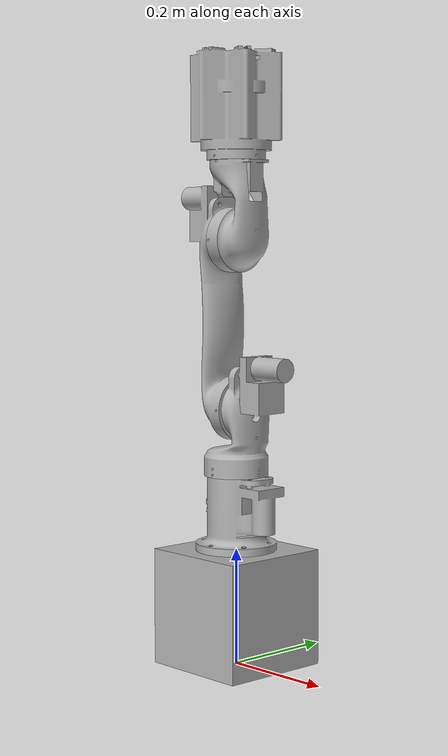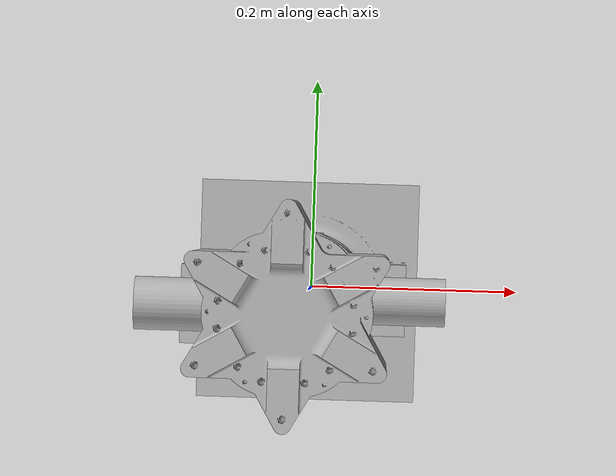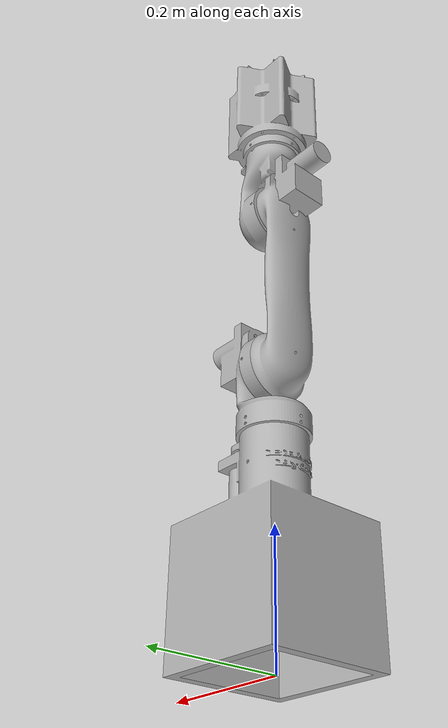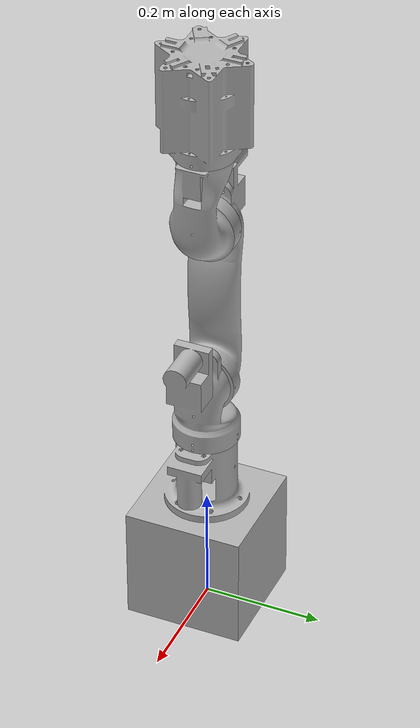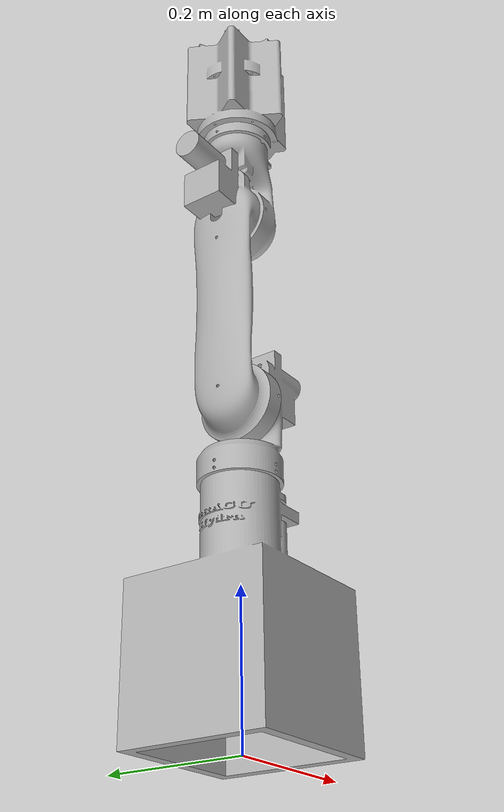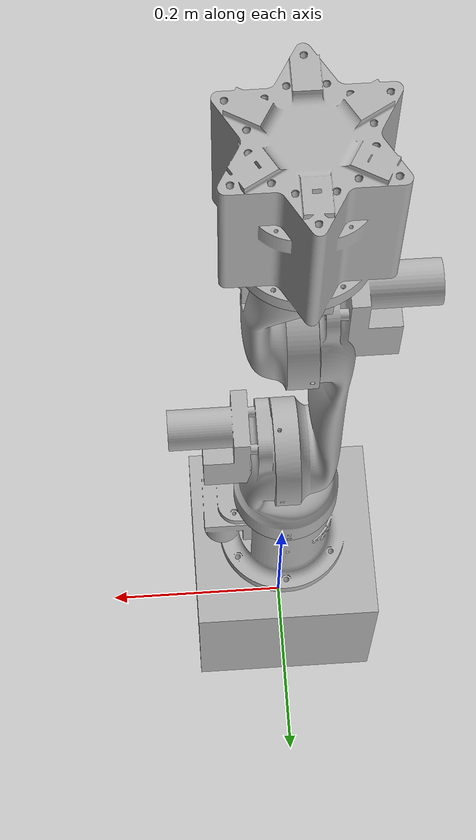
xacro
<?xml version="1.0" ?>
<robot name="bracu_hydra" xmlns:xacro="http://www.ros.org/wiki/xacro">

<xacro:include filename="$(find bracu_hydra_description)/urdf/materials.xacro" />
<xacro:include filename="$(find bracu_hydra_description)/urdf/bracu_hydra.ros2control.xml" />
<xacro:include filename="$(find bracu_hydra_description)/urdf/bracu_hydra.gazebo" />
<link name="base_link">
  <inertial>
    <origin xyz="0.0022551767112231062 -8.91140348816321e-06 0.15517476386367832" rpy="0 0 0"/>
    <mass value="3.6917084715076816"/>
    <inertia ixx="0.046056" iyy="0.046598" izz="0.030642" ixy="2e-06" iyz="5e-06" ixz="-0.001137"/>
  </inertial>
  <visual>
    <origin xyz="0 0 0" rpy="0 0 0"/>
    <geometry>
      <mesh filename="file://$(find bracu_hydra_description)/meshes/base_link.stl" scale="0.001 0.001 0.001"/>
    </geometry>
    <material name="silver"/>
  </visual>
  <collision>
    <origin xyz="0 0 0" rpy="0 0 0"/>
    <geometry>
      <mesh filename="file://$(find bracu_hydra_description)/meshes/base_link.stl" scale="0.001 0.001 0.001"/>
    </geometry>
  </collision>
</link>

<link name="joint_1_1">
  <inertial>
    <origin xyz="0.032773320348792635 6.445390689407556e-08 0.07975491684206898" rpy="0 0 0"/>
    <mass value="0.8404079344678268"/>
    <inertia ixx="0.003454" iyy="0.004028" izz="0.001503" ixy="0.0" iyz="0.0" ixz="-0.001235"/>
  </inertial>
  <visual>
    <origin xyz="-0.0 -0.0 -0.3498" rpy="0 0 0"/>
    <geometry>
      <mesh filename="file://$(find bracu_hydra_description)/meshes/joint_1_1.stl" scale="0.001 0.001 0.001"/>
    </geometry>
    <material name="silver"/>
  </visual>
  <collision>
    <origin xyz="-0.0 -0.0 -0.3498" rpy="0 0 0"/>
    <geometry>
      <mesh filename="file://$(find bracu_hydra_description)/meshes/joint_1_1.stl" scale="0.001 0.001 0.001"/>
    </geometry>
  </collision>
</link>

<link name="joint_2_1">
  <inertial>
    <origin xyz="-0.04185261004348732 -2.3686546226891623e-06 0.1748297689737171" rpy="0 0 0"/>
    <mass value="1.339897070750904"/>
    <inertia ixx="0.023904" iyy="0.023891" izz="0.001427" ixy="0.0" iyz="1e-06" ixz="0.00244"/>
  </inertial>
  <visual>
    <origin xyz="-0.0065 -0.0 -0.445" rpy="0 0 0"/>
    <geometry>
      <mesh filename="file://$(find bracu_hydra_description)/meshes/joint_2_1.stl" scale="0.001 0.001 0.001"/>
    </geometry>
    <material name="silver"/>
  </visual>
  <collision>
    <origin xyz="-0.0065 -0.0 -0.445" rpy="0 0 0"/>
    <geometry>
      <mesh filename="file://$(find bracu_hydra_description)/meshes/joint_2_1.stl" scale="0.001 0.001 0.001"/>
    </geometry>
  </collision>
</link>

<link name="joint_3_1">
  <inertial>
    <origin xyz="0.019079786268723812 -7.4400071487377335e-06 0.05434946047188782" rpy="0 0 0"/>
    <mass value="0.748712557131054"/>
    <inertia ixx="0.002913" iyy="0.002804" izz="0.00074" ixy="0.0" iyz="0.0" ixz="0.000236"/>
  </inertial>
  <visual>
    <origin xyz="0.0065 -0.0 -0.732" rpy="0 0 0"/>
    <geometry>
      <mesh filename="file://$(find bracu_hydra_description)/meshes/joint_3_1.stl" scale="0.001 0.001 0.001"/>
    </geometry>
    <material name="silver"/>
  </visual>
  <collision>
    <origin xyz="0.0065 -0.0 -0.732" rpy="0 0 0"/>
    <geometry>
      <mesh filename="file://$(find bracu_hydra_description)/meshes/joint_3_1.stl" scale="0.001 0.001 0.001"/>
    </geometry>
  </collision>
</link>

<link name="gripper_1">
  <inertial>
    <origin xyz="0.000303254844320423 -0.0003946403705161682 0.09240906086168132" rpy="0 0 0"/>
    <mass value="1.5020929627358979"/>
    <inertia ixx="0.006179" iyy="0.006219" izz="0.004143" ixy="-0.0" iyz="7e-06" ixz="-1e-05"/>
  </inertial>
  <visual>
    <origin xyz="0.0 -0.0 -0.8685" rpy="0 0 0"/>
    <geometry>
      <mesh filename="file://$(find bracu_hydra_description)/meshes/gripper_1.stl" scale="0.001 0.001 0.001"/>
    </geometry>
    <material name="silver"/>
  </visual>
  <collision>
    <origin xyz="0.0 -0.0 -0.8685" rpy="0 0 0"/>
    <geometry>
      <mesh filename="file://$(find bracu_hydra_description)/meshes/gripper_1.stl" scale="0.001 0.001 0.001"/>
    </geometry>
  </collision>
</link>

<joint name="base_link_to_joint_1" type="revolute">
  <origin xyz="0.0 0.0 0.3498" rpy="0 0 0"/>
  <parent link="base_link"/>
  <child link="joint_1_1"/>
  <axis xyz="0.0 0.0 1.0"/>
  <limit upper="1.570796" lower="-1.570796" effort="100" velocity="100"/>
</joint>

<joint name="joint_1_to_joint_2" type="revolute">
  <origin xyz="0.0065 0.0 0.0952" rpy="0 0 0"/>
  <parent link="joint_1_1"/>
  <child link="joint_2_1"/>
  <axis xyz="-1.0 0.0 0.0"/>
  <limit upper="1.745329" lower="-0.872665" effort="100" velocity="100"/>
</joint>

<joint name="joint_2_to_joint_3" type="revolute">
  <origin xyz="-0.013 0.0 0.287" rpy="0 0 0"/>
  <parent link="joint_2_1"/>
  <child link="joint_3_1"/>
  <axis xyz="1.0 0.0 0.0"/>
  <limit upper="0.872665" lower="-1.745329" effort="100" velocity="100"/>
</joint>

<joint name="joint_3_to_gripper" type="revolute">
  <origin xyz="0.0065 0.0 0.1365" rpy="0 0 0"/>
  <parent link="joint_3_1"/>
  <child link="gripper_1"/>
  <axis xyz="-0.0 0.0 1.0"/>
  <limit upper="1.570796" lower="-1.570796" effort="100" velocity="100"/>
</joint>

</robot>

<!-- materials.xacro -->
<robot name="bracu_hydra" xmlns:xacro="http://www.ros.org/wiki/xacro" >

<material name="silver">
  <color rgba="0.700 0.700 0.700 1.000"/>
</material>

</robot>

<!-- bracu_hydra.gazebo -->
<robot name="bracu_hydra" xmlns:xacro="http://www.ros.org/wiki/xacro" >

<xacro:property name="body_color" value="Gazebo/Silver" />

<gazebo reference="base_link">
  <material>${body_color}</material>
  <mu1>0.2</mu1>
  <mu2>0.2</mu2>
  <self_collide>true</self_collide>
  <gravity>true</gravity>
</gazebo>

<gazebo reference="joint_1_1">
  <material>${body_color}</material>
  <mu1>0.2</mu1>
  <mu2>0.2</mu2>
  <self_collide>true</self_collide>
</gazebo>

<gazebo reference="joint_2_1">
  <material>${body_color}</material>
  <mu1>0.2</mu1>
  <mu2>0.2</mu2>
  <self_collide>true</self_collide>
</gazebo>

<gazebo reference="joint_3_1">
  <material>${body_color}</material>
  <mu1>0.2</mu1>
  <mu2>0.2</mu2>
  <self_collide>true</self_collide>
</gazebo>

<gazebo reference="gripper_1">
  <material>${body_color}</material>
  <mu1>0.2</mu1>
  <mu2>0.2</mu2>
  <self_collide>true</self_collide>
</gazebo>

</robot>
